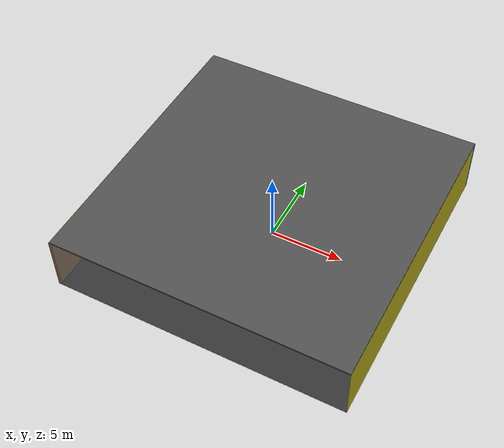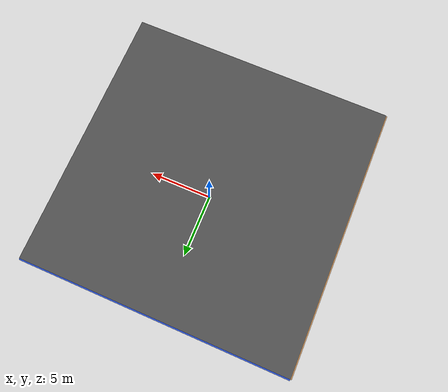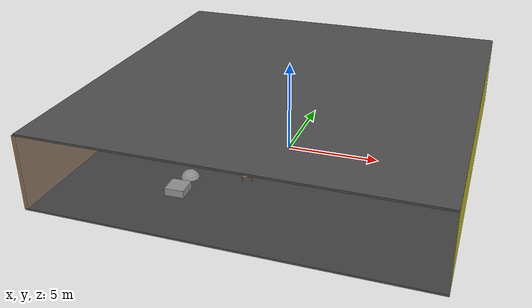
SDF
<sdf version="1.4">
 <world name="default">
  <physics type="ode">
   <max_step_size>0.001</max_step_size>
   <real_time_factor>1</real_time_factor>
   <real_time_update_rate>1000</real_time_update_rate>
   <gravity>0 0 -9.8</gravity>
  </physics>
  <scene><ambient>0.4 0.4 0.4 1</ambient><background>0.7 0.7 0.7 1</background><shadows>1</shadows></scene>
  <model name="Surrounding">
   <static>1</static>
   <link name="Ceiling">
    <collision name="Ceiling_Collision"><geometry><box><size>20 20 0.1</size></box></geometry></collision>
    <visual name="Ceiling_Visual">
     <geometry><box><size>20 20 0.1</size></box></geometry>
     <material>
      <script><uri>file://media/materials/scripts/gazebo.material</uri><name>Gazebo/DarkGrey</name></script>
     </material>
    </visual>
    <pose>0 0 4.05 0 0 0</pose>
   </link>
   <link name="Wall_South">
    <collision name="Wall_South_Collision">
     <geometry><box><size>20 0 4</size></box></geometry>
     <pose>0 0 2 0 -0 0</pose>
    </collision>
    <visual name="Wall_South_Visual">
     <pose>0 0 2 0 -0 0</pose>
     <geometry><box><size>20 0 4</size></box></geometry>
     <material>
      <script><uri>file://media/materials/scripts/gazebo.material</uri><name>Gazebo/GreyTransparent</name></script>
     </material>
    </visual>
    <velocity_decay><linear>0</linear><angular>0</angular></velocity_decay>
    <pose>0 -10 0 0 -0 0</pose>
   </link>
   <link name="Wall_East">
    <collision name="Wall_21_Collision">
     <geometry><box><size>20 0 4</size></box></geometry>
     <pose>0 0 2 0 -0 0</pose>
    </collision>
    <visual name="Wall_21_Visual">
     <pose>0 0 2 0 -0 0</pose>
     <geometry><box><size>20 0 4</size></box></geometry>
     <material>
      <script><uri>file://media/materials/scripts/gazebo.material</uri><name>Gazebo/YellowGlow</name></script>
     </material>
    </visual>
    <velocity_decay><linear>0</linear><angular>0</angular></velocity_decay>
    <pose>10 0 0 0 -0 1.5708</pose>
   </link>
   <link name="Wall_North">
    <collision name="Wall_22_Collision">
     <geometry><box><size>20 0.2 4</size></box></geometry>
     <pose>0 0 2 0 -0 0</pose>
    </collision>
    <visual name="Wall_22_Visual">
     <pose>0 0 2 0 -0 0</pose>
     <geometry><box><size>20 0.2 4</size></box></geometry>
     <material>
      <script><uri>file://media/materials/scripts/gazebo.material</uri><name>Gazebo/Blue</name></script>
     </material>
    </visual>
    <velocity_decay><linear>0</linear><angular>0</angular></velocity_decay>
    <pose>0 10 0 0 -0 0</pose>
   </link>
   <link name="Wall_West">
    <collision name="Wall_23_Collision">
     <geometry><box><size>20 0.2 4</size></box></geometry>
     <pose>0 0 2 0 -0 0</pose>
    </collision>
    <visual name="Wall_23_Visual">
     <pose>0 0 2 0 -0 0</pose>
     <geometry><box><size>20 0.2 4</size></box></geometry>
     <material>
      <script><uri>file://media/materials/scripts/gazebo.material</uri><name>Gazebo/WoodPallet</name></script>
     </material>
    </visual>
    <velocity_decay><linear>0</linear><angular>0</angular></velocity_decay>
    <pose>-10 0 0 0 0 -1.5708</pose>
   </link>
   <link name="Ground_link">
    <collision name="collision">
     <pose>0 0 .05 0 -0 0</pose>
     <geometry><box><size>20 20 0.1</size></box></geometry>
    </collision>
    <visual name="visual">
     <pose>0 0 .05 0 -0 0</pose>
     <geometry><box><size>20 20 0.1</size></box></geometry>
     <material>
      <script><uri>file://media/materials/scripts/gazebo.material</uri><name>Gazebo/Black</name></script>
     </material>
    </visual>
   </link>
   <static>1</static>
  </model>
  <spherical_coordinates>
   <surface_model>EARTH_WGS84</surface_model>
   <latitude_deg>0</latitude_deg>
   <longitude_deg>0</longitude_deg>
   <elevation>0</elevation>
   <heading_deg>0</heading_deg>
  </spherical_coordinates>
  <light name="lightball_0" type="diffuse">
   <diffuse>0.8 0.8 0.8 1</diffuse>
   <specular>0.2 0.2 0.2 1</specular>
   <attenuation>
    <range>100</range>
    <constant>0.7</constant>
    <linear>0.01</linear>
    <quadratic>0.001</quadratic>
   </attenuation>
   <direction>-0.5 0.1 -0.9</direction>
   <pose>-3.58136407466 -2.07330862235 2.66355179698 0 0 0</pose>
  </light>
  <light name="lightball_1" type="diffuse">
   <diffuse>0.8 0.8 0.8 1</diffuse>
   <specular>0.2 0.2 0.2 1</specular>
   <attenuation>
    <range>100</range>
    <constant>0.7</constant>
    <linear>0.01</linear>
    <quadratic>0.001</quadratic>
   </attenuation>
   <direction>-0.5 0.1 -0.9</direction>
   <pose>-7.05711910835 8.27321381155 3.40137468177 0 0 0</pose>
  </light>
  <light name="lightball_2" type="diffuse">
   <diffuse>0.8 0.8 0.8 1</diffuse>
   <specular>0.2 0.2 0.2 1</specular>
   <attenuation>
    <range>100</range>
    <constant>0.7</constant>
    <linear>0.01</linear>
    <quadratic>0.001</quadratic>
   </attenuation>
   <direction>-0.5 0.1 -0.9</direction>
   <pose>9.02633611626 4.39461720416 0.86031886348 0 0 0</pose>
  </light>
  <include><uri>model://cabinet</uri><pose>-7.43289158938 4.9639327844 0 0 0 0.512789407149</pose></include>
  <include>
   <uri>model://textured_shapes</uri>
   <pose>-3.80596037507 -4.86271151 0 0 0 0.0354396487319</pose>
  </include>
  <include><uri>model://cabinet</uri><pose>-0.94172393077 -4.20691425984 0 0 0 2.07960568785</pose></include>
  <include><uri>model://table</uri><pose>0.748044959539 0.831843254907 0 0 0 3.00213556326</pose></include>
 </world>
</sdf>

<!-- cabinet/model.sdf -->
<sdf version="1.5">
  <model name="cabinet">
    <static>true</static>
    <link name="cabinet_bottom_plate">
      <inertial>
        <pose>0 0 -1 0 0 0</pose>
        <inertia>
          <ixx>2.050000</ixx>
          <ixy>0</ixy>
          <ixz>0</ixz>
          <iyy>2.050000</iyy>
          <iyz>0</iyz>
          <izz>2.050000</izz>
        </inertia>
        <mass>25.000000</mass>
      </inertial>
      <collision name="cabinet_bottom_plate_geom">
        <pose>0 0 0.010000 0 0 0</pose>
        <geometry>
          <box>
            <size>0.450000 0.450000 0.020000</size>
          </box>
        </geometry>
      </collision>
      <visual name="cabinet_bottom_plate_geom_visual">
        <pose>0 0 0.010000 0 0 0</pose>
        <geometry>
          <box>
            <size>0.450000 0.450000 0.020000</size>
          </box>
        </geometry>
        <material>
          <script>
            <uri>model://media/materials/scripts/gazebo.material</uri>
            <name>Gazebo/Wood</name>
          </script>
        </material>
      </visual>
      <collision name="cabinet_bottom_plate_geom_cabinet_back_plate">
        <pose>0.235000 0 0.510000 0 0 0</pose>
        <geometry>
          <box>
            <size>0.020000 0.450000 1.020000</size>
          </box>
        </geometry>
      </collision>
      <visual name="cabinet_bottom_plate_geom_cabinet_back_plate_visual">
        <pose>0.235000 0 0.510000 0 0 0</pose>
        <geometry>
          <box>
            <size>0.020000 0.450000 1.020000</size>
          </box>
        </geometry>
        <material>
          <script>
            <uri>model://media/materials/scripts/gazebo.material</uri>
            <name>Gazebo/Wood</name>
          </script>
        </material>
      </visual>
      <collision name="cabinet_bottom_plate_geom_cabinet_left_plate">
        <pose>0 0.235000 0.510000 0 0 0</pose>
        <geometry>
          <box>
            <size>0.450000 0.020000 1.020000</size>
          </box>
        </geometry>
      </collision>
      <visual name="cabinet_bottom_plate_geom_cabinet_left_plate_visual">
        <pose>0 0.235000 0.510000 0 0 0</pose>
        <geometry>
          <box>
            <size>0.450000 0.020000 1.020000</size>
          </box>
        </geometry>
        <material>
          <script>
            <uri>model://media/materials/scripts/gazebo.material</uri>
            <name>Gazebo/Wood</name>
          </script>
        </material>
      </visual>
      <collision name="cabinet_bottom_plate_geom_cabinet_middle_plate">
        <pose>0 0 0.510000 0 0 0</pose>
        <geometry>
          <box>
            <size>0.450000 0.450000 0.020000</size>
          </box>
        </geometry>
      </collision>
      <visual name="cabinet_bottom_plate_geom_cabinet_middle_plate_visual">
        <pose>0 0 0.510000 0 0 0</pose>
        <geometry>
          <box>
            <size>0.450000 0.450000 0.020000</size>
          </box>
        </geometry>
        <material>
          <script>
            <uri>model://media/materials/scripts/gazebo.material</uri>
            <name>Gazebo/Wood</name>
          </script>
        </material>
      </visual>
      <collision name="cabinet_bottom_plate_geom_cabinet_right_plate">
        <pose>0 -0.235000 0.510000 0 0 0</pose>
        <geometry>
          <box>
            <size>0.450000 0.020000 1.020000</size>
          </box>
        </geometry>
      </collision>
      <visual name="cabinet_bottom_plate_geom_cabinet_right_plate_visual">
        <pose>0 -0.235000 0.510000 0 0 0</pose>
        <geometry>
          <box>
            <size>0.450000 0.020000 1.020000</size>
          </box>
        </geometry>
        <material>
          <script>
            <uri>model://media/materials/scripts/gazebo.material</uri>
            <name>Gazebo/Wood</name>
          </script>
        </material>
      </visual>
      <collision name="cabinet_bottom_plate_geom_cabinet_top_plate">
        <pose>0 0 1.010000 0 0 0</pose>
        <geometry>
          <box>
            <size>0.450000 0.450000 0.020000</size>
          </box>
        </geometry>
      </collision>
      <visual name="cabinet_bottom_plate_geom_cabinet_top_plate_visual">
        <pose>0 0 1.010000 0 0 0</pose>
        <geometry>
          <box>
            <size>0.450000 0.450000 0.020000</size>
          </box>
        </geometry>
        <material>
          <script>
            <uri>model://media/materials/scripts/gazebo.material</uri>
            <name>Gazebo/Wood</name>
          </script>
        </material>
      </visual>
    </link>
  </model>
</sdf>

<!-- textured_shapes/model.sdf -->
<sdf version="1.6">
  <model name="textured_shapes">
    <pose>0 0 0.5 0 0 0</pose>
    <link name="box">
      <pose>0 -1.5 0 0 0 0</pose>
      <collision name="collision">
        <geometry>
          <box>
            <size>1 1 1</size>
          </box>
        </geometry>
      </collision>
      <visual name="visual">
        <geometry>
          <box>
            <size>1 1 1</size>
          </box>
        </geometry>
        <material>
          <script>
            <uri>model://../model_source/models/textured_shapes/materials/scripts</uri>
            <uri>model://../model_source/models/textured_shapes/materials/textures</uri>
            <name>TexturedShape/Squares</name>
          </script>
        </material>
      </visual>
    </link>
    <link name="sphere">
      <collision name="collision">
        <geometry>
          <sphere>
            <radius>0.5</radius>
          </sphere>
        </geometry>
      </collision>
      <visual name="visual">
        <geometry>
          <sphere>
            <radius>0.5</radius>
          </sphere>
        </geometry>
        <material>
          <script>
            <uri>model://../model_source/models/textured_shapes/materials/scripts</uri>
            <uri>model://../model_source/models/textured_shapes/materials/textures</uri>
            <name>TexturedShape/Squares</name>
          </script>
        </material>
      </visual>
    </link>
    <link name="cylinder">
      <pose>0 1.5 0 0 0 0</pose>
      <collision name="collision">
        <geometry>
          <cylinder>
            <radius>0.5</radius>
            <length>1</length>
          </cylinder>
        </geometry>
      </collision>
      <visual name="visual">
        <geometry>
          <cylinder>
            <radius>0.5</radius>
            <length>1</length>
          </cylinder>
        </geometry>
        <material>
          <script>
            <uri>model://../model_source/models/textured_shapes/materials/scripts</uri>
            <uri>model://../model_source/models/textured_shapes/materials/textures</uri>
            <name>TexturedShape/Squares</name>
          </script>
        </material>
      </visual>
    </link>
  </model>
</sdf>

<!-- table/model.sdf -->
<sdf version="1.5">
  <model name="table">
    <static>true</static>
    <link name="link">
      <collision name="surface">
        <pose>0 0 1.0 0 0 0</pose>
        <geometry>
          <box>
            <size>1.5 0.8 0.03</size>
          </box>
        </geometry>
        <surface>
          <friction>
            <ode>
              <mu>0.6</mu>
              <mu2>0.6</mu2>
            </ode>
          </friction>
        </surface>
      </collision>
      <visual name="visual1">
        <pose>0 0 1.0 0 0 0</pose>
        <geometry>
          <box>
            <size>1.5 0.8 0.03</size>
          </box>
        </geometry>
        <material>
          <script>
            <uri>model://media/materials/scripts/gazebo.material</uri>
            <name>Gazebo/Wood</name>
          </script>
        </material>
      </visual>
      <collision name="front_left_leg">
        <pose>0.68 0.38 0.5 0 0 0</pose>
        <geometry>
          <cylinder>
            <radius>0.02</radius>
            <length>1.0</length>
          </cylinder>
        </geometry>
      </collision>
      <visual name="front_left_leg">
        <pose>0.68 0.38 0.5 0 0 0</pose>
        <geometry>
          <cylinder>
            <radius>0.02</radius>
            <length>1.0</length>
          </cylinder>
        </geometry>
        <material>
          <script>
            <uri>model://media/materials/scripts/gazebo.material</uri>
            <name>Gazebo/Grey</name>
          </script>
        </material>
      </visual>
      <collision name="front_right_leg">
        <pose>0.68 -0.38 0.5 0 0 0</pose>
        <geometry>
          <cylinder>
            <radius>0.02</radius>
            <length>1.0</length>
          </cylinder>
        </geometry>
      </collision>
      <visual name="front_right_leg">
        <pose>0.68 -0.38 0.5 0 0 0</pose>
        <geometry>
          <cylinder>
            <radius>0.02</radius>
            <length>1.0</length>
          </cylinder>
        </geometry>
        <material>
          <script>
            <uri>model://media/materials/scripts/gazebo.material</uri>
            <name>Gazebo/Grey</name>
          </script>
        </material>
      </visual>
      <collision name="back_right_leg">
        <pose>-0.68 -0.38 0.5 0 0 0</pose>
        <geometry>
          <cylinder>
            <radius>0.02</radius>
            <length>1.0</length>
          </cylinder>
        </geometry>
      </collision>
      <visual name="back_right_leg">
        <pose>-0.68 -0.38 0.5 0 0 0</pose>
        <geometry>
          <cylinder>
            <radius>0.02</radius>
            <length>1.0</length>
          </cylinder>
        </geometry>
        <material>
          <script>
            <uri>model://media/materials/scripts/gazebo.material</uri>
            <name>Gazebo/Grey</name>
          </script>
        </material>
      </visual>
      <collision name="back_left_leg">
        <pose>-0.68 0.38 0.5 0 0 0</pose>
        <geometry>
          <cylinder>
            <radius>0.02</radius>
            <length>1.0</length>
          </cylinder>
        </geometry>
      </collision>
      <visual name="back_left_leg">
        <pose>-0.68 0.38 0.5 0 0 0</pose>
        <geometry>
          <cylinder>
            <radius>0.02</radius>
            <length>1.0</length>
          </cylinder>
        </geometry>
        <material>
          <script>
            <uri>model://media/materials/scripts/gazebo.material</uri>
            <name>Gazebo/Grey</name>
          </script>
        </material>
      </visual>
    </link>
  </model>
</sdf>
